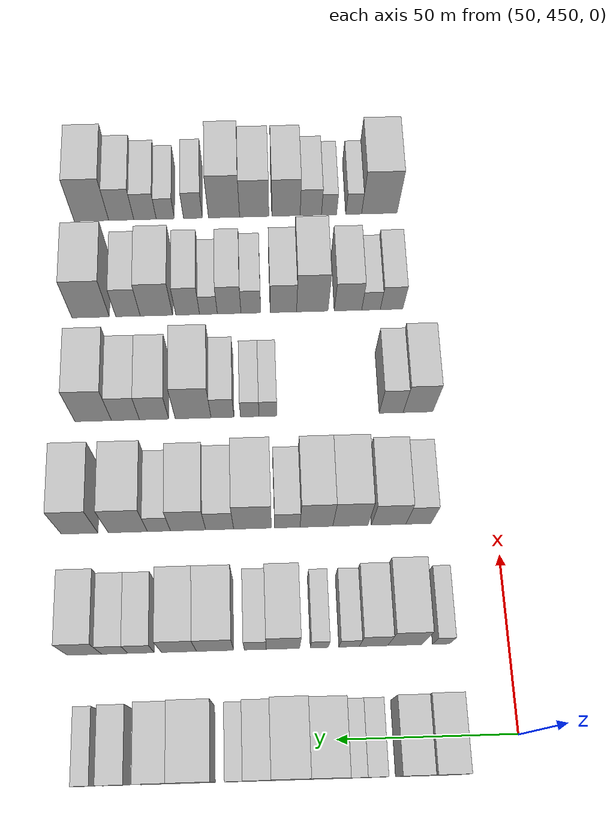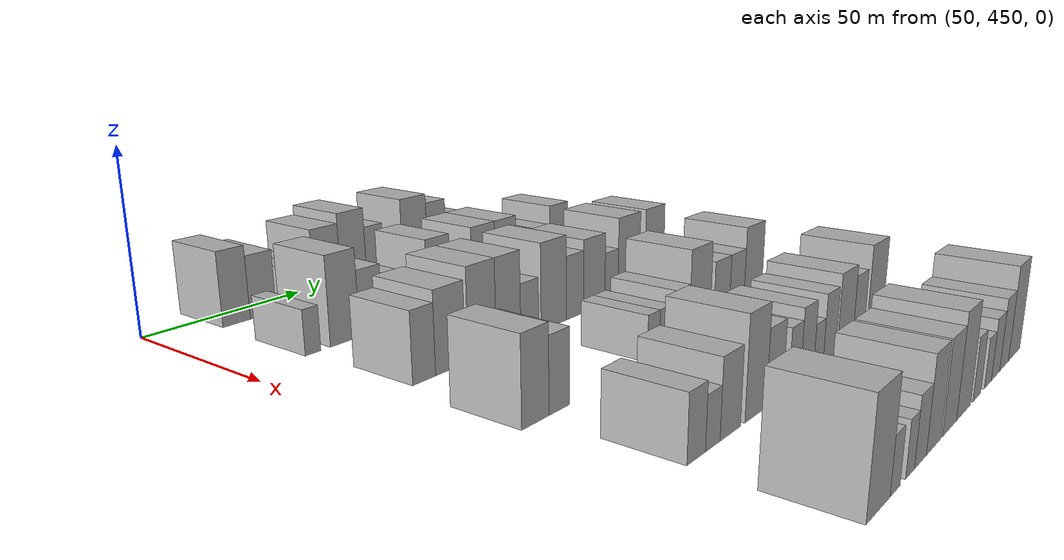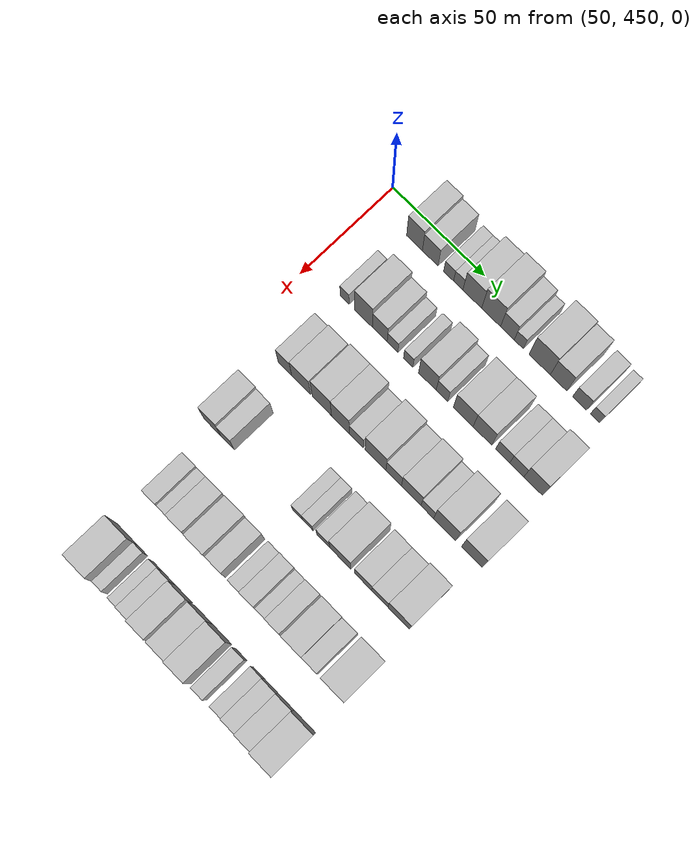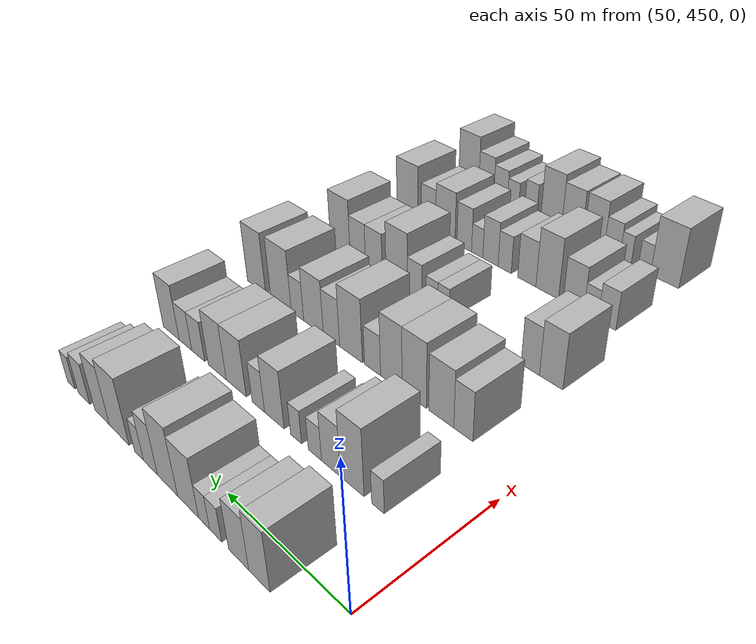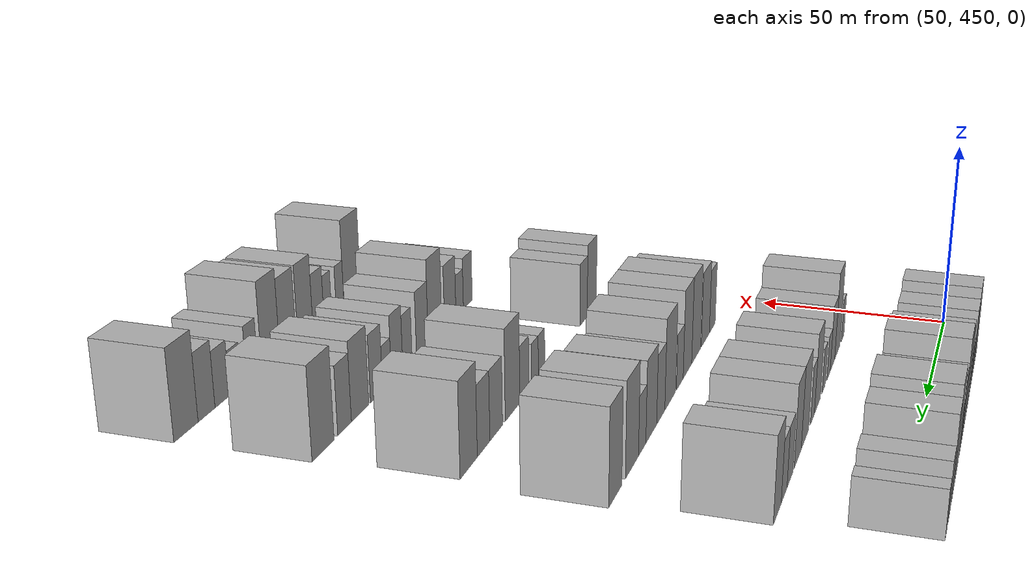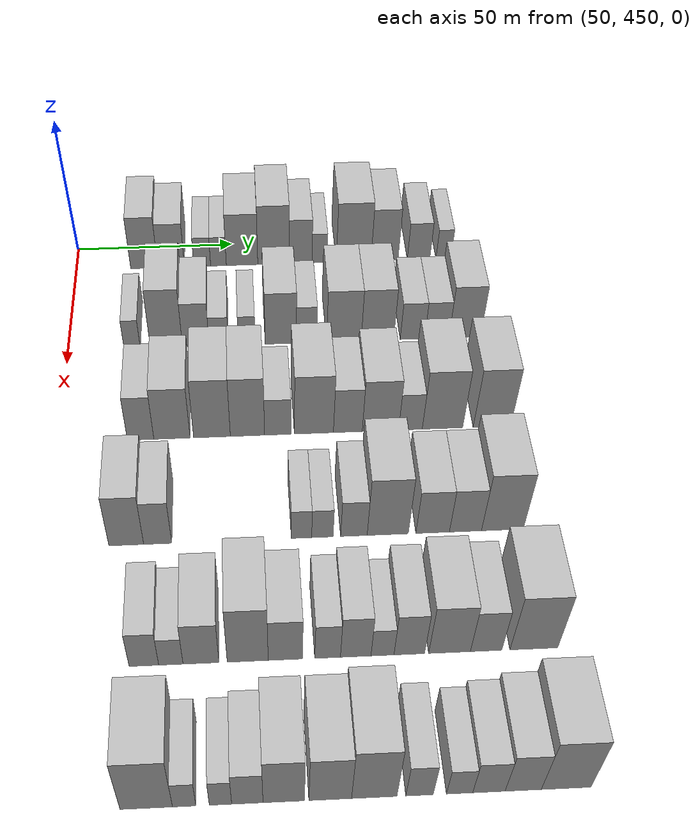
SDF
<sdf version="1.6">
 <world name="default">
  <model name="building_113">
   <static>1</static>
   <pose>50.0000 471.7088 0 0.000000 0.000000 0.000000</pose>
   <link name="link">
    <pose>0 0 10.50 0 0 0</pose>
    <collision name="collision"><geometry><box><size>20.0000 8.6019 21.0000</size></box></geometry></collision>
    <visual name="visual">
     <cast_shadows>0</cast_shadows>
     <geometry><box><size>20.0000 8.6019 21.0000</size></box></geometry>
     <material>
      <script>
       <uri>model://HANNAS_wall/materials/scripts</uri>
       <uri>model://HANNAS_wall/materials/textures</uri>
       <name>vrc/HANNAS_wall</name>
      </script>
     </material>
    </visual>
   </link>
  </model>
  <model name="building_114">
   <static>1</static>
   <pose>50.0000 480.2743 0 0.000000 0.000000 0.000000</pose>
   <link name="link">
    <pose>0 0 9.00 0 0 0</pose>
    <collision name="collision"><geometry><box><size>20.0000 8.5291 18.0000</size></box></geometry></collision>
    <visual name="visual">
     <cast_shadows>0</cast_shadows>
     <geometry><box><size>20.0000 8.5291 18.0000</size></box></geometry>
     <material>
      <script>
       <uri>model://HANNAS_wall/materials/scripts</uri>
       <uri>model://HANNAS_wall/materials/textures</uri>
       <name>vrc/HANNAS_wall</name>
      </script>
     </material>
    </visual>
   </link>
  </model>
  <model name="building_115">
   <static>1</static>
   <pose>50.0000 490.2247 0 0.000000 0.000000 0.000000</pose>
   <link name="link">
    <pose>0 0 6.00 0 0 0</pose>
    <collision name="collision"><geometry><box><size>20.0000 5.3717 12.0000</size></box></geometry></collision>
    <visual name="visual">
     <cast_shadows>0</cast_shadows>
     <geometry><box><size>20.0000 5.3717 12.0000</size></box></geometry>
     <material>
      <script>
       <uri>model://HANNAS_wall/materials/scripts</uri>
       <uri>model://HANNAS_wall/materials/textures</uri>
       <name>vrc/HANNAS_wall</name>
      </script>
     </material>
    </visual>
   </link>
  </model>
  <model name="building_116">
   <static>1</static>
   <pose>50.0000 495.4224 0 0.000000 0.000000 0.000000</pose>
   <link name="link">
    <pose>0 0 6.00 0 0 0</pose>
    <collision name="collision"><geometry><box><size>20.0000 5.0236 12.0000</size></box></geometry></collision>
    <visual name="visual">
     <cast_shadows>0</cast_shadows>
     <geometry><box><size>20.0000 5.0236 12.0000</size></box></geometry>
     <material>
      <script>
       <uri>model://HANNAS_wall/materials/scripts</uri>
       <uri>model://HANNAS_wall/materials/textures</uri>
       <name>vrc/HANNAS_wall</name>
      </script>
     </material>
    </visual>
   </link>
  </model>
  <model name="building_117">
   <static>1</static>
   <pose>50.0000 502.9723 0 0.000000 0.000000 0.000000</pose>
   <link name="link">
    <pose>0 0 10.50 0 0 0</pose>
    <collision name="collision"><geometry><box><size>20.0000 10.0762 21.0000</size></box></geometry></collision>
    <visual name="visual">
     <cast_shadows>0</cast_shadows>
     <geometry><box><size>20.0000 10.0762 21.0000</size></box></geometry>
     <material>
      <script>
       <uri>model://HANNAS_wall/materials/scripts</uri>
       <uri>model://HANNAS_wall/materials/textures</uri>
       <name>vrc/HANNAS_wall</name>
      </script>
     </material>
    </visual>
   </link>
  </model>
  <model name="building_118">
   <static>1</static>
   <pose>50.0000 513.0581 0 0.000000 0.000000 0.000000</pose>
   <link name="link">
    <pose>0 0 12.00 0 0 0</pose>
    <collision name="collision"><geometry><box><size>20.0000 10.0954 24.0000</size></box></geometry></collision>
    <visual name="visual">
     <cast_shadows>0</cast_shadows>
     <geometry><box><size>20.0000 10.0954 24.0000</size></box></geometry>
     <material>
      <script>
       <uri>model://HANNAS_wall/materials/scripts</uri>
       <uri>model://HANNAS_wall/materials/textures</uri>
       <name>vrc/HANNAS_wall</name>
      </script>
     </material>
    </visual>
   </link>
  </model>
  <model name="building_119">
   <static>1</static>
   <pose>50.0000 521.7585 0 0.000000 0.000000 0.000000</pose>
   <link name="link">
    <pose>0 0 9.00 0 0 0</pose>
    <collision name="collision"><geometry><box><size>20.0000 7.3054 18.0000</size></box></geometry></collision>
    <visual name="visual">
     <cast_shadows>0</cast_shadows>
     <geometry><box><size>20.0000 7.3054 18.0000</size></box></geometry>
     <material>
      <script>
       <uri>model://HANNAS_wall/materials/scripts</uri>
       <uri>model://HANNAS_wall/materials/textures</uri>
       <name>vrc/HANNAS_wall</name>
      </script>
     </material>
    </visual>
   </link>
  </model>
  <model name="building_120">
   <static>1</static>
   <pose>50.0000 527.8324 0 0.000000 0.000000 0.000000</pose>
   <link name="link">
    <pose>0 0 6.00 0 0 0</pose>
    <collision name="collision"><geometry><box><size>20.0000 4.8424 12.0000</size></box></geometry></collision>
    <visual name="visual">
     <cast_shadows>0</cast_shadows>
     <geometry><box><size>20.0000 4.8424 12.0000</size></box></geometry>
     <material>
      <script>
       <uri>model://HANNAS_wall/materials/scripts</uri>
       <uri>model://HANNAS_wall/materials/textures</uri>
       <name>vrc/HANNAS_wall</name>
      </script>
     </material>
    </visual>
   </link>
  </model>
  <model name="building_121">
   <static>1</static>
   <pose>50.0000 538.8467 0 0.000000 0.000000 0.000000</pose>
   <link name="link">
    <pose>0 0 12.00 0 0 0</pose>
    <collision name="collision"><geometry><box><size>20.0000 11.1860 24.0000</size></box></geometry></collision>
    <visual name="visual">
     <cast_shadows>0</cast_shadows>
     <geometry><box><size>20.0000 11.1860 24.0000</size></box></geometry>
     <material>
      <script>
       <uri>model://HANNAS_wall/materials/scripts</uri>
       <uri>model://HANNAS_wall/materials/textures</uri>
       <name>vrc/HANNAS_wall</name>
      </script>
     </material>
    </visual>
   </link>
  </model>
  <model name="building_122">
   <static>1</static>
   <pose>50.0000 548.8034 0 0.000000 0.000000 0.000000</pose>
   <link name="link">
    <pose>0 0 10.50 0 0 0</pose>
    <collision name="collision"><geometry><box><size>20.0000 8.7273 21.0000</size></box></geometry></collision>
    <visual name="visual">
     <cast_shadows>0</cast_shadows>
     <geometry><box><size>20.0000 8.7273 21.0000</size></box></geometry>
     <material>
      <script>
       <uri>model://HANNAS_wall/materials/scripts</uri>
       <uri>model://HANNAS_wall/materials/textures</uri>
       <name>vrc/HANNAS_wall</name>
      </script>
     </material>
    </visual>
   </link>
  </model>
  <model name="building_123">
   <static>1</static>
   <pose>50.0000 559.8126 0 0.000000 0.000000 0.000000</pose>
   <link name="link">
    <pose>0 0 7.50 0 0 0</pose>
    <collision name="collision"><geometry><box><size>20.0000 7.2911 15.0000</size></box></geometry></collision>
    <visual name="visual">
     <cast_shadows>0</cast_shadows>
     <geometry><box><size>20.0000 7.2911 15.0000</size></box></geometry>
     <material>
      <script>
       <uri>model://HANNAS_wall/materials/scripts</uri>
       <uri>model://HANNAS_wall/materials/textures</uri>
       <name>vrc/HANNAS_wall</name>
      </script>
     </material>
    </visual>
   </link>
  </model>
  <model name="building_124">
   <static>1</static>
   <pose>50.0000 567.8747 0 0.000000 0.000000 0.000000</pose>
   <link name="link">
    <pose>0 0 6.00 0 0 0</pose>
    <collision name="collision"><geometry><box><size>20.0000 4.8332 12.0000</size></box></geometry></collision>
    <visual name="visual">
     <cast_shadows>0</cast_shadows>
     <geometry><box><size>20.0000 4.8332 12.0000</size></box></geometry>
     <material>
      <script>
       <uri>model://HANNAS_wall/materials/scripts</uri>
       <uri>model://HANNAS_wall/materials/textures</uri>
       <name>vrc/HANNAS_wall</name>
      </script>
     </material>
    </visual>
   </link>
  </model>
  <model name="building_240">
   <static>1</static>
   <pose>85.0000 469.2284 0 0.000000 0.000000 0.000000</pose>
   <link name="link">
    <pose>0 0 6.00 0 0 0</pose>
    <collision name="collision"><geometry><box><size>20.0000 4.8600 12.0000</size></box></geometry></collision>
    <visual name="visual">
     <cast_shadows>0</cast_shadows>
     <geometry><box><size>20.0000 4.8600 12.0000</size></box></geometry>
     <material>
      <script>
       <uri>model://HANNAS_wall/materials/scripts</uri>
       <uri>model://HANNAS_wall/materials/textures</uri>
       <name>vrc/HANNAS_wall</name>
      </script>
     </material>
    </visual>
   </link>
  </model>
  <model name="building_241">
   <static>1</static>
   <pose>85.0000 479.4768 0 0.000000 0.000000 0.000000</pose>
   <link name="link">
    <pose>0 0 12.00 0 0 0</pose>
    <collision name="collision"><geometry><box><size>20.0000 9.6370 24.0000</size></box></geometry></collision>
    <visual name="visual">
     <cast_shadows>0</cast_shadows>
     <geometry><box><size>20.0000 9.6370 24.0000</size></box></geometry>
     <material>
      <script>
       <uri>model://HANNAS_wall/materials/scripts</uri>
       <uri>model://HANNAS_wall/materials/textures</uri>
       <name>vrc/HANNAS_wall</name>
      </script>
     </material>
    </visual>
   </link>
  </model>
  <model name="building_242">
   <static>1</static>
   <pose>85.0000 488.3011 0 0.000000 0.000000 0.000000</pose>
   <link name="link">
    <pose>0 0 9.00 0 0 0</pose>
    <collision name="collision"><geometry><box><size>20.0000 8.0117 18.0000</size></box></geometry></collision>
    <visual name="visual">
     <cast_shadows>0</cast_shadows>
     <geometry><box><size>20.0000 8.0117 18.0000</size></box></geometry>
     <material>
      <script>
       <uri>model://HANNAS_wall/materials/scripts</uri>
       <uri>model://HANNAS_wall/materials/textures</uri>
       <name>vrc/HANNAS_wall</name>
      </script>
     </material>
    </visual>
   </link>
  </model>
  <model name="building_243">
   <static>1</static>
   <pose>85.0000 495.2084 0 0.000000 0.000000 0.000000</pose>
   <link name="link">
    <pose>0 0 6.00 0 0 0</pose>
    <collision name="collision"><geometry><box><size>20.0000 5.8029 12.0000</size></box></geometry></collision>
    <visual name="visual">
     <cast_shadows>0</cast_shadows>
     <geometry><box><size>20.0000 5.8029 12.0000</size></box></geometry>
     <material>
      <script>
       <uri>model://HANNAS_wall/materials/scripts</uri>
       <uri>model://HANNAS_wall/materials/textures</uri>
       <name>vrc/HANNAS_wall</name>
      </script>
     </material>
    </visual>
   </link>
  </model>
  <model name="building_244">
   <static>1</static>
   <pose>85.0000 503.6392 0 0.000000 0.000000 0.000000</pose>
   <link name="link">
    <pose>0 0 6.00 0 0 0</pose>
    <collision name="collision"><geometry><box><size>20.0000 5.0587 12.0000</size></box></geometry></collision>
    <visual name="visual">
     <cast_shadows>0</cast_shadows>
     <geometry><box><size>20.0000 5.0587 12.0000</size></box></geometry>
     <material>
      <script>
       <uri>model://HANNAS_wall/materials/scripts</uri>
       <uri>model://HANNAS_wall/materials/textures</uri>
       <name>vrc/HANNAS_wall</name>
      </script>
     </material>
    </visual>
   </link>
  </model>
  <model name="building_245">
   <static>1</static>
   <pose>85.0000 513.8636 0 0.000000 0.000000 0.000000</pose>
   <link name="link">
    <pose>0 0 10.50 0 0 0</pose>
    <collision name="collision"><geometry><box><size>20.0000 9.3901 21.0000</size></box></geometry></collision>
    <visual name="visual">
     <cast_shadows>0</cast_shadows>
     <geometry><box><size>20.0000 9.3901 21.0000</size></box></geometry>
     <material>
      <script>
       <uri>model://HANNAS_wall/materials/scripts</uri>
       <uri>model://HANNAS_wall/materials/textures</uri>
       <name>vrc/HANNAS_wall</name>
      </script>
     </material>
    </visual>
   </link>
  </model>
  <model name="building_246">
   <static>1</static>
   <pose>85.0000 521.6339 0 0.000000 0.000000 0.000000</pose>
   <link name="link">
    <pose>0 0 7.50 0 0 0</pose>
    <collision name="collision"><geometry><box><size>20.0000 6.1504 15.0000</size></box></geometry></collision>
    <visual name="visual">
     <cast_shadows>0</cast_shadows>
     <geometry><box><size>20.0000 6.1504 15.0000</size></box></geometry>
     <material>
      <script>
       <uri>model://HANNAS_wall/materials/scripts</uri>
       <uri>model://HANNAS_wall/materials/textures</uri>
       <name>vrc/HANNAS_wall</name>
      </script>
     </material>
    </visual>
   </link>
  </model>
  <model name="building_247">
   <static>1</static>
   <pose>85.0000 532.9416 0 0.000000 0.000000 0.000000</pose>
   <link name="link">
    <pose>0 0 10.50 0 0 0</pose>
    <collision name="collision"><geometry><box><size>20.0000 10.4651 21.0000</size></box></geometry></collision>
    <visual name="visual">
     <cast_shadows>0</cast_shadows>
     <geometry><box><size>20.0000 10.4651 21.0000</size></box></geometry>
     <material>
      <script>
       <uri>model://HANNAS_wall/materials/scripts</uri>
       <uri>model://HANNAS_wall/materials/textures</uri>
       <name>vrc/HANNAS_wall</name>
      </script>
     </material>
    </visual>
   </link>
  </model>
  <model name="building_248">
   <static>1</static>
   <pose>85.0000 543.0946 0 0.000000 0.000000 0.000000</pose>
   <link name="link">
    <pose>0 0 10.50 0 0 0</pose>
    <collision name="collision"><geometry><box><size>20.0000 9.8409 21.0000</size></box></geometry></collision>
    <visual name="visual">
     <cast_shadows>0</cast_shadows>
     <geometry><box><size>20.0000 9.8409 21.0000</size></box></geometry>
     <material>
      <script>
       <uri>model://HANNAS_wall/materials/scripts</uri>
       <uri>model://HANNAS_wall/materials/textures</uri>
       <name>vrc/HANNAS_wall</name>
      </script>
     </material>
    </visual>
   </link>
  </model>
  <model name="building_249">
   <static>1</static>
   <pose>85.0000 553.7186 0 0.000000 0.000000 0.000000</pose>
   <link name="link">
    <pose>0 0 7.50 0 0 0</pose>
    <collision name="collision"><geometry><box><size>20.0000 7.4071 15.0000</size></box></geometry></collision>
    <visual name="visual">
     <cast_shadows>0</cast_shadows>
     <geometry><box><size>20.0000 7.4071 15.0000</size></box></geometry>
     <material>
      <script>
       <uri>model://HANNAS_wall/materials/scripts</uri>
       <uri>model://HANNAS_wall/materials/textures</uri>
       <name>vrc/HANNAS_wall</name>
      </script>
     </material>
    </visual>
   </link>
  </model>
  <model name="building_250">
   <static>1</static>
   <pose>85.0000 561.1134 0 0.000000 0.000000 0.000000</pose>
   <link name="link">
    <pose>0 0 7.50 0 0 0</pose>
    <collision name="collision"><geometry><box><size>20.0000 7.3824 15.0000</size></box></geometry></collision>
    <visual name="visual">
     <cast_shadows>0</cast_shadows>
     <geometry><box><size>20.0000 7.3824 15.0000</size></box></geometry>
     <material>
      <script>
       <uri>model://HANNAS_wall/materials/scripts</uri>
       <uri>model://HANNAS_wall/materials/textures</uri>
       <name>vrc/HANNAS_wall</name>
      </script>
     </material>
    </visual>
   </link>
  </model>
  <model name="building_251">
   <static>1</static>
   <pose>85.0000 569.6321 0 0.000000 0.000000 0.000000</pose>
   <link name="link">
    <pose>0 0 10.50 0 0 0</pose>
    <collision name="collision"><geometry><box><size>20.0000 9.6550 21.0000</size></box></geometry></collision>
    <visual name="visual">
     <cast_shadows>0</cast_shadows>
     <geometry><box><size>20.0000 9.6550 21.0000</size></box></geometry>
     <material>
      <script>
       <uri>model://HANNAS_wall/materials/scripts</uri>
       <uri>model://HANNAS_wall/materials/textures</uri>
       <name>vrc/HANNAS_wall</name>
      </script>
     </material>
    </visual>
   </link>
  </model>
  <model name="building_363">
   <static>1</static>
   <pose>120.0000 472.9235 0 0.000000 0.000000 0.000000</pose>
   <link name="link">
    <pose>0 0 9.00 0 0 0</pose>
    <collision name="collision"><geometry><box><size>20.0000 7.4165 18.0000</size></box></geometry></collision>
    <visual name="visual">
     <cast_shadows>0</cast_shadows>
     <geometry><box><size>20.0000 7.4165 18.0000</size></box></geometry>
     <material>
      <script>
       <uri>model://HANNAS_wall/materials/scripts</uri>
       <uri>model://HANNAS_wall/materials/textures</uri>
       <name>vrc/HANNAS_wall</name>
      </script>
     </material>
    </visual>
   </link>
  </model>
  <model name="building_364">
   <static>1</static>
   <pose>120.0000 481.7088 0 0.000000 0.000000 0.000000</pose>
   <link name="link">
    <pose>0 0 10.50 0 0 0</pose>
    <collision name="collision"><geometry><box><size>20.0000 10.1541 21.0000</size></box></geometry></collision>
    <visual name="visual">
     <cast_shadows>0</cast_shadows>
     <geometry><box><size>20.0000 10.1541 21.0000</size></box></geometry>
     <material>
      <script>
       <uri>model://HANNAS_wall/materials/scripts</uri>
       <uri>model://HANNAS_wall/materials/textures</uri>
       <name>vrc/HANNAS_wall</name>
      </script>
     </material>
    </visual>
   </link>
  </model>
  <model name="building_365">
   <static>1</static>
   <pose>120.0000 492.9511 0 0.000000 0.000000 0.000000</pose>
   <link name="link">
    <pose>0 0 12.00 0 0 0</pose>
    <collision name="collision"><geometry><box><size>20.0000 10.3305 24.0000</size></box></geometry></collision>
    <visual name="visual">
     <cast_shadows>0</cast_shadows>
     <geometry><box><size>20.0000 10.3305 24.0000</size></box></geometry>
     <material>
      <script>
       <uri>model://HANNAS_wall/materials/scripts</uri>
       <uri>model://HANNAS_wall/materials/textures</uri>
       <name>vrc/HANNAS_wall</name>
      </script>
     </material>
    </visual>
   </link>
  </model>
  <model name="building_366">
   <static>1</static>
   <pose>120.0000 502.9421 0 0.000000 0.000000 0.000000</pose>
   <link name="link">
    <pose>0 0 12.00 0 0 0</pose>
    <collision name="collision"><geometry><box><size>20.0000 9.6515 24.0000</size></box></geometry></collision>
    <visual name="visual">
     <cast_shadows>0</cast_shadows>
     <geometry><box><size>20.0000 9.6515 24.0000</size></box></geometry>
     <material>
      <script>
       <uri>model://HANNAS_wall/materials/scripts</uri>
       <uri>model://HANNAS_wall/materials/textures</uri>
       <name>vrc/HANNAS_wall</name>
      </script>
     </material>
    </visual>
   </link>
  </model>
  <model name="building_367">
   <static>1</static>
   <pose>120.0000 511.4753 0 0.000000 0.000000 0.000000</pose>
   <link name="link">
    <pose>0 0 7.50 0 0 0</pose>
    <collision name="collision"><geometry><box><size>20.0000 7.4149 15.0000</size></box></geometry></collision>
    <visual name="visual">
     <cast_shadows>0</cast_shadows>
     <geometry><box><size>20.0000 7.4149 15.0000</size></box></geometry>
     <material>
      <script>
       <uri>model://HANNAS_wall/materials/scripts</uri>
       <uri>model://HANNAS_wall/materials/textures</uri>
       <name>vrc/HANNAS_wall</name>
      </script>
     </material>
    </visual>
   </link>
  </model>
  <model name="building_368">
   <static>1</static>
   <pose>120.0000 521.6994 0 0.000000 0.000000 0.000000</pose>
   <link name="link">
    <pose>0 0 12.00 0 0 0</pose>
    <collision name="collision"><geometry><box><size>20.0000 11.0334 24.0000</size></box></geometry></collision>
    <visual name="visual">
     <cast_shadows>0</cast_shadows>
     <geometry><box><size>20.0000 11.0334 24.0000</size></box></geometry>
     <material>
      <script>
       <uri>model://HANNAS_wall/materials/scripts</uri>
       <uri>model://HANNAS_wall/materials/textures</uri>
       <name>vrc/HANNAS_wall</name>
      </script>
     </material>
    </visual>
   </link>
  </model>
  <model name="building_369">
   <static>1</static>
   <pose>120.0000 531.3002 0 0.000000 0.000000 0.000000</pose>
   <link name="link">
    <pose>0 0 9.00 0 0 0</pose>
    <collision name="collision"><geometry><box><size>20.0000 8.1682 18.0000</size></box></geometry></collision>
    <visual name="visual">
     <cast_shadows>0</cast_shadows>
     <geometry><box><size>20.0000 8.1682 18.0000</size></box></geometry>
     <material>
      <script>
       <uri>model://HANNAS_wall/materials/scripts</uri>
       <uri>model://HANNAS_wall/materials/textures</uri>
       <name>vrc/HANNAS_wall</name>
      </script>
     </material>
    </visual>
   </link>
  </model>
  <model name="building_370">
   <static>1</static>
   <pose>120.0000 540.5417 0 0.000000 0.000000 0.000000</pose>
   <link name="link">
    <pose>0 0 10.50 0 0 0</pose>
    <collision name="collision"><geometry><box><size>20.0000 10.3147 21.0000</size></box></geometry></collision>
    <visual name="visual">
     <cast_shadows>0</cast_shadows>
     <geometry><box><size>20.0000 10.3147 21.0000</size></box></geometry>
     <material>
      <script>
       <uri>model://HANNAS_wall/materials/scripts</uri>
       <uri>model://HANNAS_wall/materials/textures</uri>
       <name>vrc/HANNAS_wall</name>
      </script>
     </material>
    </visual>
   </link>
  </model>
  <model name="building_371">
   <static>1</static>
   <pose>120.0000 549.0625 0 0.000000 0.000000 0.000000</pose>
   <link name="link">
    <pose>0 0 7.50 0 0 0</pose>
    <collision name="collision"><geometry><box><size>20.0000 6.7269 15.0000</size></box></geometry></collision>
    <visual name="visual">
     <cast_shadows>0</cast_shadows>
     <geometry><box><size>20.0000 6.7269 15.0000</size></box></geometry>
     <material>
      <script>
       <uri>model://HANNAS_wall/materials/scripts</uri>
       <uri>model://HANNAS_wall/materials/textures</uri>
       <name>vrc/HANNAS_wall</name>
      </script>
     </material>
    </visual>
   </link>
  </model>
  <model name="building_372">
   <static>1</static>
   <pose>120.0000 558.1771 0 0.000000 0.000000 0.000000</pose>
   <link name="link">
    <pose>0 0 12.00 0 0 0</pose>
    <collision name="collision"><geometry><box><size>20.0000 11.5024 24.0000</size></box></geometry></collision>
    <visual name="visual">
     <cast_shadows>0</cast_shadows>
     <geometry><box><size>20.0000 11.5024 24.0000</size></box></geometry>
     <material>
      <script>
       <uri>model://HANNAS_wall/materials/scripts</uri>
       <uri>model://HANNAS_wall/materials/textures</uri>
       <name>vrc/HANNAS_wall</name>
      </script>
     </material>
    </visual>
   </link>
  </model>
  <model name="building_373">
   <static>1</static>
   <pose>120.0000 572.2870 0 0.000000 0.000000 0.000000</pose>
   <link name="link">
    <pose>0 0 12.00 0 0 0</pose>
    <collision name="collision"><geometry><box><size>20.0000 10.7174 24.0000</size></box></geometry></collision>
    <visual name="visual">
     <cast_shadows>0</cast_shadows>
     <geometry><box><size>20.0000 10.7174 24.0000</size></box></geometry>
     <material>
      <script>
       <uri>model://HANNAS_wall/materials/scripts</uri>
       <uri>model://HANNAS_wall/materials/textures</uri>
       <name>vrc/HANNAS_wall</name>
      </script>
     </material>
    </visual>
   </link>
  </model>
  <model name="building_485">
   <static>1</static>
   <pose>155.0000 470.3629 0 0.000000 0.000000 0.000000</pose>
   <link name="link">
    <pose>0 0 10.50 0 0 0</pose>
    <collision name="collision"><geometry><box><size>20.0000 9.0726 21.0000</size></box></geometry></collision>
    <visual name="visual">
     <cast_shadows>0</cast_shadows>
     <geometry><box><size>20.0000 9.0726 21.0000</size></box></geometry>
     <material>
      <script>
       <uri>model://HANNAS_wall/materials/scripts</uri>
       <uri>model://HANNAS_wall/materials/textures</uri>
       <name>vrc/HANNAS_wall</name>
      </script>
     </material>
    </visual>
   </link>
  </model>
  <model name="building_486">
   <static>1</static>
   <pose>155.0000 478.5649 0 0.000000 0.000000 0.000000</pose>
   <link name="link">
    <pose>0 0 9.00 0 0 0</pose>
    <collision name="collision"><geometry><box><size>20.0000 7.3315 18.0000</size></box></geometry></collision>
    <visual name="visual">
     <cast_shadows>0</cast_shadows>
     <geometry><box><size>20.0000 7.3315 18.0000</size></box></geometry>
     <material>
      <script>
       <uri>model://HANNAS_wall/materials/scripts</uri>
       <uri>model://HANNAS_wall/materials/textures</uri>
       <name>vrc/HANNAS_wall</name>
      </script>
     </material>
    </visual>
   </link>
  </model>
  <model name="building_487">
   <static>1</static>
   <pose>155.0000 516.2542 0 0.000000 0.000000 0.000000</pose>
   <link name="link">
    <pose>0 0 6.00 0 0 0</pose>
    <collision name="collision"><geometry><box><size>20.0000 5.3490 12.0000</size></box></geometry></collision>
    <visual name="visual">
     <cast_shadows>0</cast_shadows>
     <geometry><box><size>20.0000 5.3490 12.0000</size></box></geometry>
     <material>
      <script>
       <uri>model://HANNAS_wall/materials/scripts</uri>
       <uri>model://HANNAS_wall/materials/textures</uri>
       <name>vrc/HANNAS_wall</name>
      </script>
     </material>
    </visual>
   </link>
  </model>
  <model name="building_488">
   <static>1</static>
   <pose>155.0000 521.7461 0 0.000000 0.000000 0.000000</pose>
   <link name="link">
    <pose>0 0 6.00 0 0 0</pose>
    <collision name="collision"><geometry><box><size>20.0000 5.6346 12.0000</size></box></geometry></collision>
    <visual name="visual">
     <cast_shadows>0</cast_shadows>
     <geometry><box><size>20.0000 5.6346 12.0000</size></box></geometry>
     <material>
      <script>
       <uri>model://HANNAS_wall/materials/scripts</uri>
       <uri>model://HANNAS_wall/materials/textures</uri>
       <name>vrc/HANNAS_wall</name>
      </script>
     </material>
    </visual>
   </link>
  </model>
  <model name="building_489">
   <static>1</static>
   <pose>155.0000 530.0596 0 0.000000 0.000000 0.000000</pose>
   <link name="link">
    <pose>0 0 7.50 0 0 0</pose>
    <collision name="collision"><geometry><box><size>20.0000 6.9924 15.0000</size></box></geometry></collision>
    <visual name="visual">
     <cast_shadows>0</cast_shadows>
     <geometry><box><size>20.0000 6.9924 15.0000</size></box></geometry>
     <material>
      <script>
       <uri>model://HANNAS_wall/materials/scripts</uri>
       <uri>model://HANNAS_wall/materials/textures</uri>
       <name>vrc/HANNAS_wall</name>
      </script>
     </material>
    </visual>
   </link>
  </model>
  <model name="building_490">
   <static>1</static>
   <pose>155.0000 538.9998 0 0.000000 0.000000 0.000000</pose>
   <link name="link">
    <pose>0 0 12.00 0 0 0</pose>
    <collision name="collision"><geometry><box><size>20.0000 10.8880 24.0000</size></box></geometry></collision>
    <visual name="visual">
     <cast_shadows>0</cast_shadows>
     <geometry><box><size>20.0000 10.8880 24.0000</size></box></geometry>
     <material>
      <script>
       <uri>model://HANNAS_wall/materials/scripts</uri>
       <uri>model://HANNAS_wall/materials/textures</uri>
       <name>vrc/HANNAS_wall</name>
      </script>
     </material>
    </visual>
   </link>
  </model>
  <model name="building_491">
   <static>1</static>
   <pose>155.0000 550.8888 0 0.000000 0.000000 0.000000</pose>
   <link name="link">
    <pose>0 0 9.00 0 0 0</pose>
    <collision name="collision"><geometry><box><size>20.0000 8.8901 18.0000</size></box></geometry></collision>
    <visual name="visual">
     <cast_shadows>0</cast_shadows>
     <geometry><box><size>20.0000 8.8901 18.0000</size></box></geometry>
     <material>
      <script>
       <uri>model://HANNAS_wall/materials/scripts</uri>
       <uri>model://HANNAS_wall/materials/textures</uri>
       <name>vrc/HANNAS_wall</name>
      </script>
     </material>
    </visual>
   </link>
  </model>
  <model name="building_492">
   <static>1</static>
   <pose>155.0000 559.5872 0 0.000000 0.000000 0.000000</pose>
   <link name="link">
    <pose>0 0 9.00 0 0 0</pose>
    <collision name="collision"><geometry><box><size>20.0000 8.5066 18.0000</size></box></geometry></collision>
    <visual name="visual">
     <cast_shadows>0</cast_shadows>
     <geometry><box><size>20.0000 8.5066 18.0000</size></box></geometry>
     <material>
      <script>
       <uri>model://HANNAS_wall/materials/scripts</uri>
       <uri>model://HANNAS_wall/materials/textures</uri>
       <name>vrc/HANNAS_wall</name>
      </script>
     </material>
    </visual>
   </link>
  </model>
  <model name="building_493">
   <static>1</static>
   <pose>155.0000 569.4093 0 0.000000 0.000000 0.000000</pose>
   <link name="link">
    <pose>0 0 12.00 0 0 0</pose>
    <collision name="collision"><geometry><box><size>20.0000 11.1376 24.0000</size></box></geometry></collision>
    <visual name="visual">
     <cast_shadows>0</cast_shadows>
     <geometry><box><size>20.0000 11.1376 24.0000</size></box></geometry>
     <material>
      <script>
       <uri>model://HANNAS_wall/materials/scripts</uri>
       <uri>model://HANNAS_wall/materials/textures</uri>
       <name>vrc/HANNAS_wall</name>
      </script>
     </material>
    </visual>
   </link>
  </model>
  <model name="building_610">
   <static>1</static>
   <pose>190.0000 476.0759 0 0.000000 0.000000 0.000000</pose>
   <link name="link">
    <pose>0 0 7.50 0 0 0</pose>
    <collision name="collision"><geometry><box><size>20.0000 7.1448 15.0000</size></box></geometry></collision>
    <visual name="visual">
     <cast_shadows>0</cast_shadows>
     <geometry><box><size>20.0000 7.1448 15.0000</size></box></geometry>
     <material>
      <script>
       <uri>model://HANNAS_wall/materials/scripts</uri>
       <uri>model://HANNAS_wall/materials/textures</uri>
       <name>vrc/HANNAS_wall</name>
      </script>
     </material>
    </visual>
   </link>
  </model>
  <model name="building_611">
   <static>1</static>
   <pose>190.0000 482.5960 0 0.000000 0.000000 0.000000</pose>
   <link name="link">
    <pose>0 0 6.00 0 0 0</pose>
    <collision name="collision"><geometry><box><size>20.0000 5.8953 12.0000</size></box></geometry></collision>
    <visual name="visual">
     <cast_shadows>0</cast_shadows>
     <geometry><box><size>20.0000 5.8953 12.0000</size></box></geometry>
     <material>
      <script>
       <uri>model://HANNAS_wall/materials/scripts</uri>
       <uri>model://HANNAS_wall/materials/textures</uri>
       <name>vrc/HANNAS_wall</name>
      </script>
     </material>
    </visual>
   </link>
  </model>
  <model name="building_612">
   <static>1</static>
   <pose>190.0000 489.8990 0 0.000000 0.000000 0.000000</pose>
   <link name="link">
    <pose>0 0 9.00 0 0 0</pose>
    <collision name="collision"><geometry><box><size>20.0000 8.7106 18.0000</size></box></geometry></collision>
    <visual name="visual">
     <cast_shadows>0</cast_shadows>
     <geometry><box><size>20.0000 8.7106 18.0000</size></box></geometry>
     <material>
      <script>
       <uri>model://HANNAS_wall/materials/scripts</uri>
       <uri>model://HANNAS_wall/materials/textures</uri>
       <name>vrc/HANNAS_wall</name>
      </script>
     </material>
    </visual>
   </link>
  </model>
  <model name="building_613">
   <static>1</static>
   <pose>190.0000 501.2311 0 0.000000 0.000000 0.000000</pose>
   <link name="link">
    <pose>0 0 12.00 0 0 0</pose>
    <collision name="collision"><geometry><box><size>20.0000 9.9536 24.0000</size></box></geometry></collision>
    <visual name="visual">
     <cast_shadows>0</cast_shadows>
     <geometry><box><size>20.0000 9.9536 24.0000</size></box></geometry>
     <material>
      <script>
       <uri>model://HANNAS_wall/materials/scripts</uri>
       <uri>model://HANNAS_wall/materials/textures</uri>
       <name>vrc/HANNAS_wall</name>
      </script>
     </material>
    </visual>
   </link>
  </model>
  <model name="building_614">
   <static>1</static>
   <pose>190.0000 510.3817 0 0.000000 0.000000 0.000000</pose>
   <link name="link">
    <pose>0 0 9.00 0 0 0</pose>
    <collision name="collision"><geometry><box><size>20.0000 8.3475 18.0000</size></box></geometry></collision>
    <visual name="visual">
     <cast_shadows>0</cast_shadows>
     <geometry><box><size>20.0000 8.3475 18.0000</size></box></geometry>
     <material>
      <script>
       <uri>model://HANNAS_wall/materials/scripts</uri>
       <uri>model://HANNAS_wall/materials/textures</uri>
       <name>vrc/HANNAS_wall</name>
      </script>
     </material>
    </visual>
   </link>
  </model>
  <model name="building_615">
   <static>1</static>
   <pose>190.0000 520.6843 0 0.000000 0.000000 0.000000</pose>
   <link name="link">
    <pose>0 0 7.50 0 0 0</pose>
    <collision name="collision"><geometry><box><size>20.0000 6.2577 15.0000</size></box></geometry></collision>
    <visual name="visual">
     <cast_shadows>0</cast_shadows>
     <geometry><box><size>20.0000 6.2577 15.0000</size></box></geometry>
     <material>
      <script>
       <uri>model://HANNAS_wall/materials/scripts</uri>
       <uri>model://HANNAS_wall/materials/textures</uri>
       <name>vrc/HANNAS_wall</name>
      </script>
     </material>
    </visual>
   </link>
  </model>
  <model name="building_616">
   <static>1</static>
   <pose>190.0000 527.5434 0 0.000000 0.000000 0.000000</pose>
   <link name="link">
    <pose>0 0 9.00 0 0 0</pose>
    <collision name="collision"><geometry><box><size>20.0000 7.4606 18.0000</size></box></geometry></collision>
    <visual name="visual">
     <cast_shadows>0</cast_shadows>
     <geometry><box><size>20.0000 7.4606 18.0000</size></box></geometry>
     <material>
      <script>
       <uri>model://HANNAS_wall/materials/scripts</uri>
       <uri>model://HANNAS_wall/materials/textures</uri>
       <name>vrc/HANNAS_wall</name>
      </script>
     </material>
    </visual>
   </link>
  </model>
  <model name="building_617">
   <static>1</static>
   <pose>190.0000 534.0896 0 0.000000 0.000000 0.000000</pose>
   <link name="link">
    <pose>0 0 6.00 0 0 0</pose>
    <collision name="collision"><geometry><box><size>20.0000 5.6317 12.0000</size></box></geometry></collision>
    <visual name="visual">
     <cast_shadows>0</cast_shadows>
     <geometry><box><size>20.0000 5.6317 12.0000</size></box></geometry>
     <material>
      <script>
       <uri>model://HANNAS_wall/materials/scripts</uri>
       <uri>model://HANNAS_wall/materials/textures</uri>
       <name>vrc/HANNAS_wall</name>
      </script>
     </material>
    </visual>
   </link>
  </model>
  <model name="building_618">
   <static>1</static>
   <pose>190.0000 540.6591 0 0.000000 0.000000 0.000000</pose>
   <link name="link">
    <pose>0 0 9.00 0 0 0</pose>
    <collision name="collision"><geometry><box><size>20.0000 7.5073 18.0000</size></box></geometry></collision>
    <visual name="visual">
     <cast_shadows>0</cast_shadows>
     <geometry><box><size>20.0000 7.5073 18.0000</size></box></geometry>
     <material>
      <script>
       <uri>model://HANNAS_wall/materials/scripts</uri>
       <uri>model://HANNAS_wall/materials/textures</uri>
       <name>vrc/HANNAS_wall</name>
      </script>
     </material>
    </visual>
   </link>
  </model>
  <model name="building_619">
   <static>1</static>
   <pose>190.0000 550.5337 0 0.000000 0.000000 0.000000</pose>
   <link name="link">
    <pose>0 0 10.50 0 0 0</pose>
    <collision name="collision"><geometry><box><size>20.0000 10.2419 21.0000</size></box></geometry></collision>
    <visual name="visual">
     <cast_shadows>0</cast_shadows>
     <geometry><box><size>20.0000 10.2419 21.0000</size></box></geometry>
     <material>
      <script>
       <uri>model://HANNAS_wall/materials/scripts</uri>
       <uri>model://HANNAS_wall/materials/textures</uri>
       <name>vrc/HANNAS_wall</name>
      </script>
     </material>
    </visual>
   </link>
  </model>
  <model name="building_620">
   <static>1</static>
   <pose>190.0000 559.5287 0 0.000000 0.000000 0.000000</pose>
   <link name="link">
    <pose>0 0 9.00 0 0 0</pose>
    <collision name="collision"><geometry><box><size>20.0000 7.7480 18.0000</size></box></geometry></collision>
    <visual name="visual">
     <cast_shadows>0</cast_shadows>
     <geometry><box><size>20.0000 7.7480 18.0000</size></box></geometry>
     <material>
      <script>
       <uri>model://HANNAS_wall/materials/scripts</uri>
       <uri>model://HANNAS_wall/materials/textures</uri>
       <name>vrc/HANNAS_wall</name>
      </script>
     </material>
    </visual>
   </link>
  </model>
  <model name="building_621">
   <static>1</static>
   <pose>190.0000 571.3030 0 0.000000 0.000000 0.000000</pose>
   <link name="link">
    <pose>0 0 12.00 0 0 0</pose>
    <collision name="collision"><geometry><box><size>20.0000 11.8007 24.0000</size></box></geometry></collision>
    <visual name="visual">
     <cast_shadows>0</cast_shadows>
     <geometry><box><size>20.0000 11.8007 24.0000</size></box></geometry>
     <material>
      <script>
       <uri>model://HANNAS_wall/materials/scripts</uri>
       <uri>model://HANNAS_wall/materials/textures</uri>
       <name>vrc/HANNAS_wall</name>
      </script>
     </material>
    </visual>
   </link>
  </model>
  <model name="building_742">
   <static>1</static>
   <pose>225.0000 477.7202 0 0.000000 0.000000 0.000000</pose>
   <link name="link">
    <pose>0 0 12.00 0 0 0</pose>
    <collision name="collision"><geometry><box><size>20.0000 11.6785 24.0000</size></box></geometry></collision>
    <visual name="visual">
     <cast_shadows>0</cast_shadows>
     <geometry><box><size>20.0000 11.6785 24.0000</size></box></geometry>
     <material>
      <script>
       <uri>model://HANNAS_wall/materials/scripts</uri>
       <uri>model://HANNAS_wall/materials/textures</uri>
       <name>vrc/HANNAS_wall</name>
      </script>
     </material>
    </visual>
   </link>
  </model>
  <model name="building_743">
   <static>1</static>
   <pose>225.0000 486.1652 0 0.000000 0.000000 0.000000</pose>
   <link name="link">
    <pose>0 0 6.00 0 0 0</pose>
    <collision name="collision"><geometry><box><size>20.0000 5.2114 12.0000</size></box></geometry></collision>
    <visual name="visual">
     <cast_shadows>0</cast_shadows>
     <geometry><box><size>20.0000 5.2114 12.0000</size></box></geometry>
     <material>
      <script>
       <uri>model://HANNAS_wall/materials/scripts</uri>
       <uri>model://HANNAS_wall/materials/textures</uri>
       <name>vrc/HANNAS_wall</name>
      </script>
     </material>
    </visual>
   </link>
  </model>
  <model name="building_744">
   <static>1</static>
   <pose>225.0000 494.2627 0 0.000000 0.000000 0.000000</pose>
   <link name="link">
    <pose>0 0 6.00 0 0 0</pose>
    <collision name="collision"><geometry><box><size>20.0000 4.9836 12.0000</size></box></geometry></collision>
    <visual name="visual">
     <cast_shadows>0</cast_shadows>
     <geometry><box><size>20.0000 4.9836 12.0000</size></box></geometry>
     <material>
      <script>
       <uri>model://HANNAS_wall/materials/scripts</uri>
       <uri>model://HANNAS_wall/materials/textures</uri>
       <name>vrc/HANNAS_wall</name>
      </script>
     </material>
    </visual>
   </link>
  </model>
  <model name="building_745">
   <static>1</static>
   <pose>225.0000 500.2608 0 0.000000 0.000000 0.000000</pose>
   <link name="link">
    <pose>0 0 7.50 0 0 0</pose>
    <collision name="collision"><geometry><box><size>20.0000 7.0125 15.0000</size></box></geometry></collision>
    <visual name="visual">
     <cast_shadows>0</cast_shadows>
     <geometry><box><size>20.0000 7.0125 15.0000</size></box></geometry>
     <material>
      <script>
       <uri>model://HANNAS_wall/materials/scripts</uri>
       <uri>model://HANNAS_wall/materials/textures</uri>
       <name>vrc/HANNAS_wall</name>
      </script>
     </material>
    </visual>
   </link>
  </model>
  <model name="building_746">
   <static>1</static>
   <pose>225.0000 508.4049 0 0.000000 0.000000 0.000000</pose>
   <link name="link">
    <pose>0 0 10.50 0 0 0</pose>
    <collision name="collision"><geometry><box><size>20.0000 9.2758 21.0000</size></box></geometry></collision>
    <visual name="visual">
     <cast_shadows>0</cast_shadows>
     <geometry><box><size>20.0000 9.2758 21.0000</size></box></geometry>
     <material>
      <script>
       <uri>model://HANNAS_wall/materials/scripts</uri>
       <uri>model://HANNAS_wall/materials/textures</uri>
       <name>vrc/HANNAS_wall</name>
      </script>
     </material>
    </visual>
   </link>
  </model>
  <model name="building_747">
   <static>1</static>
   <pose>225.0000 518.8319 0 0.000000 0.000000 0.000000</pose>
   <link name="link">
    <pose>0 0 10.50 0 0 0</pose>
    <collision name="collision"><geometry><box><size>20.0000 9.5783 21.0000</size></box></geometry></collision>
    <visual name="visual">
     <cast_shadows>0</cast_shadows>
     <geometry><box><size>20.0000 9.5783 21.0000</size></box></geometry>
     <material>
      <script>
       <uri>model://HANNAS_wall/materials/scripts</uri>
       <uri>model://HANNAS_wall/materials/textures</uri>
       <name>vrc/HANNAS_wall</name>
      </script>
     </material>
    </visual>
   </link>
  </model>
  <model name="building_748">
   <static>1</static>
   <pose>225.0000 528.7260 0 0.000000 0.000000 0.000000</pose>
   <link name="link">
    <pose>0 0 12.00 0 0 0</pose>
    <collision name="collision"><geometry><box><size>20.0000 10.2099 24.0000</size></box></geometry></collision>
    <visual name="visual">
     <cast_shadows>0</cast_shadows>
     <geometry><box><size>20.0000 10.2099 24.0000</size></box></geometry>
     <material>
      <script>
       <uri>model://HANNAS_wall/materials/scripts</uri>
       <uri>model://HANNAS_wall/materials/textures</uri>
       <name>vrc/HANNAS_wall</name>
      </script>
     </material>
    </visual>
   </link>
  </model>
  <model name="building_749">
   <static>1</static>
   <pose>225.0000 538.9222 0 0.000000 0.000000 0.000000</pose>
   <link name="link">
    <pose>0 0 7.50 0 0 0</pose>
    <collision name="collision"><geometry><box><size>20.0000 6.1825 15.0000</size></box></geometry></collision>
    <visual name="visual">
     <cast_shadows>0</cast_shadows>
     <geometry><box><size>20.0000 6.1825 15.0000</size></box></geometry>
     <material>
      <script>
       <uri>model://HANNAS_wall/materials/scripts</uri>
       <uri>model://HANNAS_wall/materials/textures</uri>
       <name>vrc/HANNAS_wall</name>
      </script>
     </material>
    </visual>
   </link>
  </model>
  <model name="building_750">
   <static>1</static>
   <pose>225.0000 547.9859 0 0.000000 0.000000 0.000000</pose>
   <link name="link">
    <pose>0 0 6.00 0 0 0</pose>
    <collision name="collision"><geometry><box><size>20.0000 5.9450 12.0000</size></box></geometry></collision>
    <visual name="visual">
     <cast_shadows>0</cast_shadows>
     <geometry><box><size>20.0000 5.9450 12.0000</size></box></geometry>
     <material>
      <script>
       <uri>model://HANNAS_wall/materials/scripts</uri>
       <uri>model://HANNAS_wall/materials/textures</uri>
       <name>vrc/HANNAS_wall</name>
      </script>
     </material>
    </visual>
   </link>
  </model>
  <model name="building_751">
   <static>1</static>
   <pose>225.0000 554.6271 0 0.000000 0.000000 0.000000</pose>
   <link name="link">
    <pose>0 0 7.50 0 0 0</pose>
    <collision name="collision"><geometry><box><size>20.0000 7.3375 15.0000</size></box></geometry></collision>
    <visual name="visual">
     <cast_shadows>0</cast_shadows>
     <geometry><box><size>20.0000 7.3375 15.0000</size></box></geometry>
     <material>
      <script>
       <uri>model://HANNAS_wall/materials/scripts</uri>
       <uri>model://HANNAS_wall/materials/textures</uri>
       <name>vrc/HANNAS_wall</name>
      </script>
     </material>
    </visual>
   </link>
  </model>
  <model name="building_752">
   <static>1</static>
   <pose>225.0000 562.4059 0 0.000000 0.000000 0.000000</pose>
   <link name="link">
    <pose>0 0 9.00 0 0 0</pose>
    <collision name="collision"><geometry><box><size>20.0000 8.2201 18.0000</size></box></geometry></collision>
    <visual name="visual">
     <cast_shadows>0</cast_shadows>
     <geometry><box><size>20.0000 8.2201 18.0000</size></box></geometry>
     <material>
      <script>
       <uri>model://HANNAS_wall/materials/scripts</uri>
       <uri>model://HANNAS_wall/materials/textures</uri>
       <name>vrc/HANNAS_wall</name>
      </script>
     </material>
    </visual>
   </link>
  </model>
  <model name="building_753">
   <static>1</static>
   <pose>225.0000 572.1635 0 0.000000 0.000000 0.000000</pose>
   <link name="link">
    <pose>0 0 12.00 0 0 0</pose>
    <collision name="collision"><geometry><box><size>20.0000 11.2951 24.0000</size></box></geometry></collision>
    <visual name="visual">
     <cast_shadows>0</cast_shadows>
     <geometry><box><size>20.0000 11.2951 24.0000</size></box></geometry>
     <material>
      <script>
       <uri>model://HANNAS_wall/materials/scripts</uri>
       <uri>model://HANNAS_wall/materials/textures</uri>
       <name>vrc/HANNAS_wall</name>
      </script>
     </material>
    </visual>
   </link>
  </model>
 </world>
</sdf>
